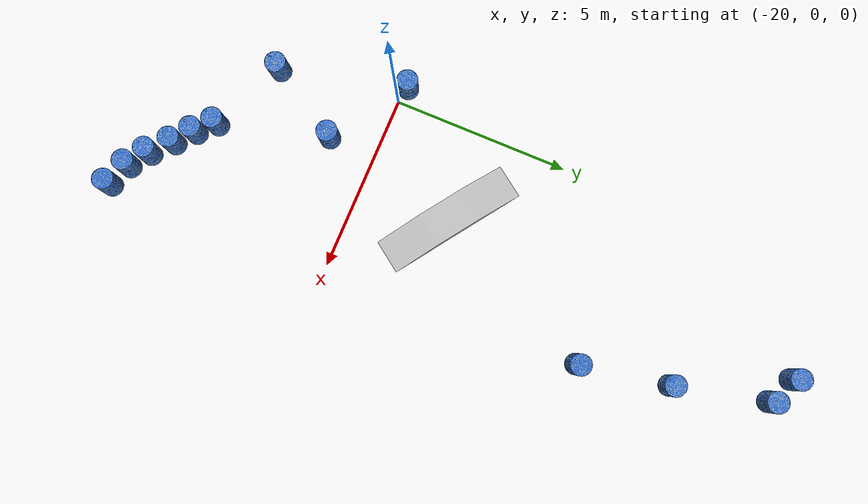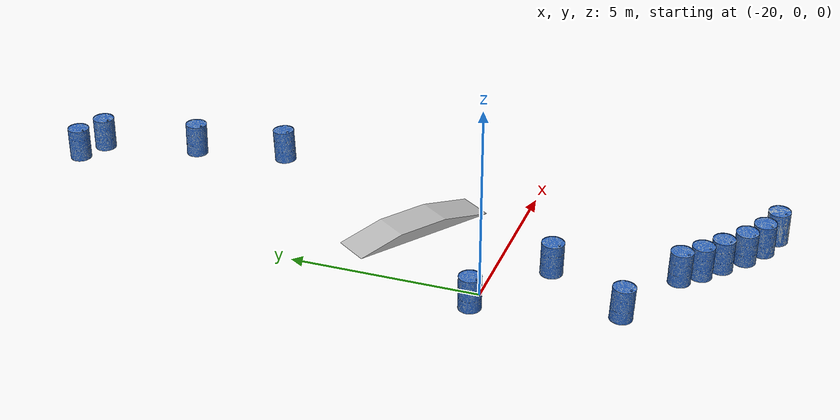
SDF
<sdf version="1.6">
 <world name="default">
  <model name="ramp_1">
   <static>1</static>
   <link name="link">
    <collision name="collision">
     <geometry><mesh><uri>model://ramp/meshes/ramp.dae</uri><scale>1 1 1</scale></mesh></geometry>
     <surface><friction><ode><mu>100</mu><mu2>50</mu2></ode></friction></surface>
    </collision>
    <visual name="visual">
     <geometry><mesh><uri>model://ramp/meshes/ramp.dae</uri><scale>1 1 1</scale></mesh></geometry>
    </visual>
   </link>
   <pose>-16.608 3.804 0 0 -0 0.955</pose>
  </model>
  <model name="barrel_76">
   <link name="link">
    <inertial>
     <mass>500</mass>
     <inertia><ixx>51.2096</ixx><iyy>51.2096</iyy><izz>25</izz><ixy>0</ixy><ixz>0</ixz><iyz>0</iyz></inertia>
    </inertial>
    <collision name="collision">
     <geometry><mesh><uri>model://barrel/meshes/barrel.dae</uri><scale>1 1 1</scale></mesh></geometry>
    </collision>
    <visual name="visual">
     <geometry><mesh><uri>model://barrel/meshes/barrel.dae</uri><scale>1 1 1</scale></mesh></geometry>
    </visual>
   </link>
   <pose>-16.4851 12.0753 0.058876 0.003627 -0.005555 -0.000553</pose>
  </model>
  <model name="barrel_77">
   <link name="link">
    <inertial>
     <mass>500</mass>
     <inertia><ixx>51.2096</ixx><iyy>51.2096</iyy><izz>25</izz><ixy>0</ixy><ixz>0</ixz><iyz>0</iyz></inertia>
    </inertial>
    <collision name="collision">
     <geometry><mesh><uri>model://barrel/meshes/barrel.dae</uri><scale>1 1 1</scale></mesh></geometry>
    </collision>
    <visual name="visual">
     <geometry><mesh><uri>model://barrel/meshes/barrel.dae</uri><scale>1 1 1</scale></mesh></geometry>
    </visual>
   </link>
   <pose>-17.2625 12.4322 0.054333 -0.001716 -0.008313 0.006817</pose>
  </model>
  <model name="barrel_90">
   <link name="link">
    <inertial>
     <mass>500</mass>
     <inertia><ixx>51.2096</ixx><iyy>51.2096</iyy><izz>25</izz><ixy>0</ixy><ixz>0</ixz><iyz>0</iyz></inertia>
    </inertial>
    <collision name="collision">
     <geometry><mesh><uri>model://barrel/meshes/barrel.dae</uri><scale>1 1 1</scale></mesh></geometry>
    </collision>
    <visual name="visual">
     <geometry><mesh><uri>model://barrel/meshes/barrel.dae</uri><scale>1 1 1</scale></mesh></geometry>
    </visual>
   </link>
   <pose>-15.8719 9.4945 0.017599 0.014931 0.002395 0.000289</pose>
  </model>
  <model name="barrel_92">
   <link name="link">
    <inertial>
     <mass>500</mass>
     <inertia><ixx>51.2096</ixx><iyy>51.2096</iyy><izz>25</izz><ixy>0</ixy><ixz>0</ixz><iyz>0</iyz></inertia>
    </inertial>
    <collision name="collision">
     <geometry><mesh><uri>model://barrel/meshes/barrel.dae</uri><scale>1 1 1</scale></mesh></geometry>
    </collision>
    <visual name="visual">
     <geometry><mesh><uri>model://barrel/meshes/barrel.dae</uri><scale>1 1 1</scale></mesh></geometry>
    </visual>
   </link>
   <pose>-15.4635 6.99965 0.05623 -0.052814 0.009253 -0.114961</pose>
  </model>
  <model name="barrel_93">
   <link name="link">
    <inertial>
     <mass>500</mass>
     <inertia><ixx>51.2096</ixx><iyy>51.2096</iyy><izz>25</izz><ixy>0</ixy><ixz>0</ixz><iyz>0</iyz></inertia>
    </inertial>
    <collision name="collision">
     <geometry><mesh><uri>model://barrel/meshes/barrel.dae</uri><scale>1 1 1</scale></mesh></geometry>
    </collision>
    <visual name="visual">
     <geometry><mesh><uri>model://barrel/meshes/barrel.dae</uri><scale>1 1 1</scale></mesh></geometry>
    </visual>
   </link>
   <pose>-20.7613 -0.194183 -0.101889 0.006218 -0.015255 -0.000278</pose>
  </model>
  <model name="barrel_94">
   <link name="link">
    <inertial>
     <mass>500</mass>
     <inertia><ixx>51.2096</ixx><iyy>51.2096</iyy><izz>25</izz><ixy>0</ixy><ixz>0</ixz><iyz>0</iyz></inertia>
    </inertial>
    <collision name="collision">
     <geometry><mesh><uri>model://barrel/meshes/barrel.dae</uri><scale>1 1 1</scale></mesh></geometry>
    </collision>
    <visual name="visual">
     <geometry><mesh><uri>model://barrel/meshes/barrel.dae</uri><scale>1 1 1</scale></mesh></geometry>
    </visual>
   </link>
   <pose>-18.6012 -1.64734 -0.085504 0.02261 -0.017974 -0.000295</pose>
  </model>
  <model name="barrel_95">
   <link name="link">
    <inertial>
     <mass>500</mass>
     <inertia><ixx>51.2096</ixx><iyy>51.2096</iyy><izz>25</izz><ixy>0</ixy><ixz>0</ixz><iyz>0</iyz></inertia>
    </inertial>
    <collision name="collision">
     <geometry><mesh><uri>model://barrel/meshes/barrel.dae</uri><scale>1 1 1</scale></mesh></geometry>
    </collision>
    <visual name="visual">
     <geometry><mesh><uri>model://barrel/meshes/barrel.dae</uri><scale>1 1 1</scale></mesh></geometry>
    </visual>
   </link>
   <pose>-19.8742 -3.73849 -0.19132 0.04903 0.004063 -0.000259</pose>
  </model>
  <model name="barrel_96">
   <link name="link">
    <inertial>
     <mass>500</mass>
     <inertia><ixx>51.2096</ixx><iyy>51.2096</iyy><izz>25</izz><ixy>0</ixy><ixz>0</ixz><iyz>0</iyz></inertia>
    </inertial>
    <collision name="collision">
     <geometry><mesh><uri>model://barrel/meshes/barrel.dae</uri><scale>1 1 1</scale></mesh></geometry>
    </collision>
    <visual name="visual">
     <geometry><mesh><uri>model://barrel/meshes/barrel.dae</uri><scale>1 1 1</scale></mesh></geometry>
    </visual>
   </link>
   <pose>-17.7451 -4.72176 -0.209174 0.033721 -0.018024 0.017137</pose>
  </model>
  <model name="barrel_97">
   <link name="link">
    <inertial>
     <mass>500</mass>
     <inertia><ixx>51.2096</ixx><iyy>51.2096</iyy><izz>25</izz><ixy>0</ixy><ixz>0</ixz><iyz>0</iyz></inertia>
    </inertial>
    <collision name="collision">
     <geometry><mesh><uri>model://barrel/meshes/barrel.dae</uri><scale>1 1 1</scale></mesh></geometry>
    </collision>
    <visual name="visual">
     <geometry><mesh><uri>model://barrel/meshes/barrel.dae</uri><scale>1 1 1</scale></mesh></geometry>
    </visual>
   </link>
   <pose>-17.298 -5.17236 -0.215327 0.029629 -0.019101 -0.003344</pose>
  </model>
  <model name="barrel_98">
   <link name="link">
    <inertial>
     <mass>500</mass>
     <inertia><ixx>51.2096</ixx><iyy>51.2096</iyy><izz>25</izz><ixy>0</ixy><ixz>0</ixz><iyz>0</iyz></inertia>
    </inertial>
    <collision name="collision">
     <geometry><mesh><uri>model://barrel/meshes/barrel.dae</uri><scale>1 1 1</scale></mesh></geometry>
    </collision>
    <visual name="visual">
     <geometry><mesh><uri>model://barrel/meshes/barrel.dae</uri><scale>1 1 1</scale></mesh></geometry>
    </visual>
   </link>
   <pose>-16.7933 -5.60133 -0.213138 0.020225 -0.0293 -0.000317</pose>
  </model>
  <model name="barrel_99">
   <link name="link">
    <inertial>
     <mass>500</mass>
     <inertia><ixx>51.2096</ixx><iyy>51.2096</iyy><izz>25</izz><ixy>0</ixy><ixz>0</ixz><iyz>0</iyz></inertia>
    </inertial>
    <collision name="collision">
     <geometry><mesh><uri>model://barrel/meshes/barrel.dae</uri><scale>1 1 1</scale></mesh></geometry>
    </collision>
    <visual name="visual">
     <geometry><mesh><uri>model://barrel/meshes/barrel.dae</uri><scale>1 1 1</scale></mesh></geometry>
    </visual>
   </link>
   <pose>-16.254 -6.08876 -0.201999 0.020218 -0.055559 -0.013092</pose>
  </model>
  <model name="barrel_100">
   <link name="link">
    <inertial>
     <mass>500</mass>
     <inertia><ixx>51.2096</ixx><iyy>51.2096</iyy><izz>25</izz><ixy>0</ixy><ixz>0</ixz><iyz>0</iyz></inertia>
    </inertial>
    <collision name="collision">
     <geometry><mesh><uri>model://barrel/meshes/barrel.dae</uri><scale>1 1 1</scale></mesh></geometry>
    </collision>
    <visual name="visual">
     <geometry><mesh><uri>model://barrel/meshes/barrel.dae</uri><scale>1 1 1</scale></mesh></geometry>
    </visual>
   </link>
   <pose>-15.7084 -6.46729 -0.175691 0.006594 -0.059697 -0.011977</pose>
  </model>
  <model name="barrel_101">
   <link name="link">
    <inertial>
     <mass>500</mass>
     <inertia><ixx>51.2096</ixx><iyy>51.2096</iyy><izz>25</izz><ixy>0</ixy><ixz>0</ixz><iyz>0</iyz></inertia>
    </inertial>
    <collision name="collision">
     <geometry><mesh><uri>model://barrel/meshes/barrel.dae</uri><scale>1 1 1</scale></mesh></geometry>
    </collision>
    <visual name="visual">
     <geometry><mesh><uri>model://barrel/meshes/barrel.dae</uri><scale>1 1 1</scale></mesh></geometry>
    </visual>
   </link>
   <pose>-15.0381 -6.71319 -0.142025 0.008642 -0.043701 -0.005796</pose>
  </model>
 </world>
</sdf>
